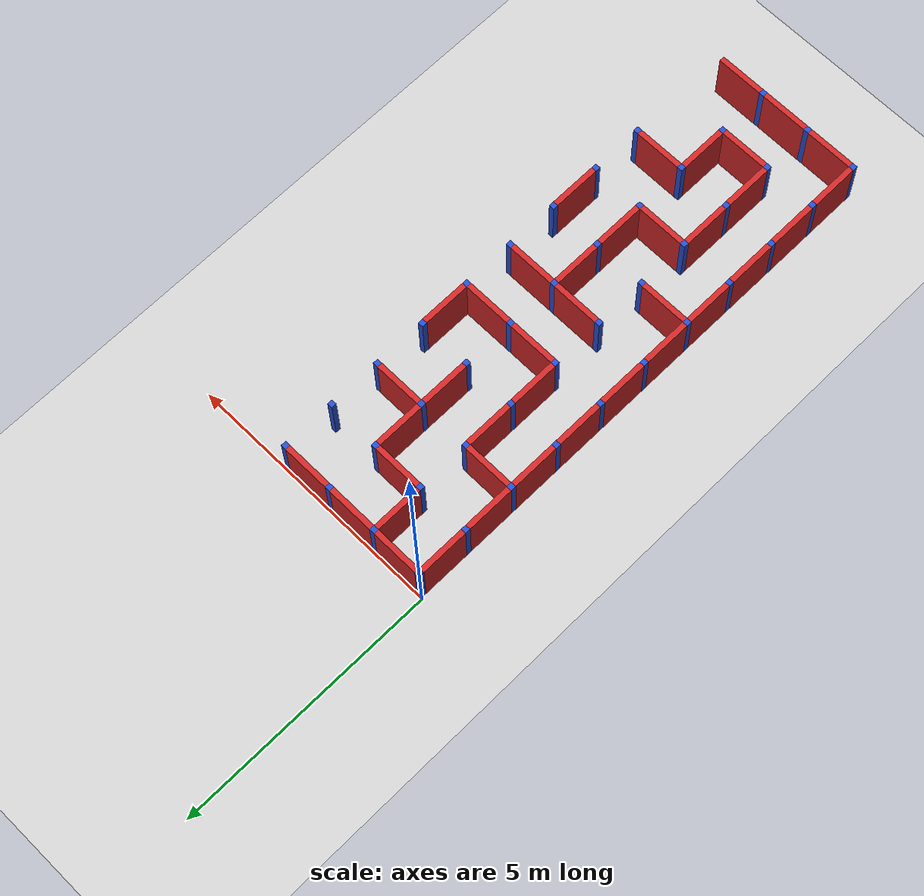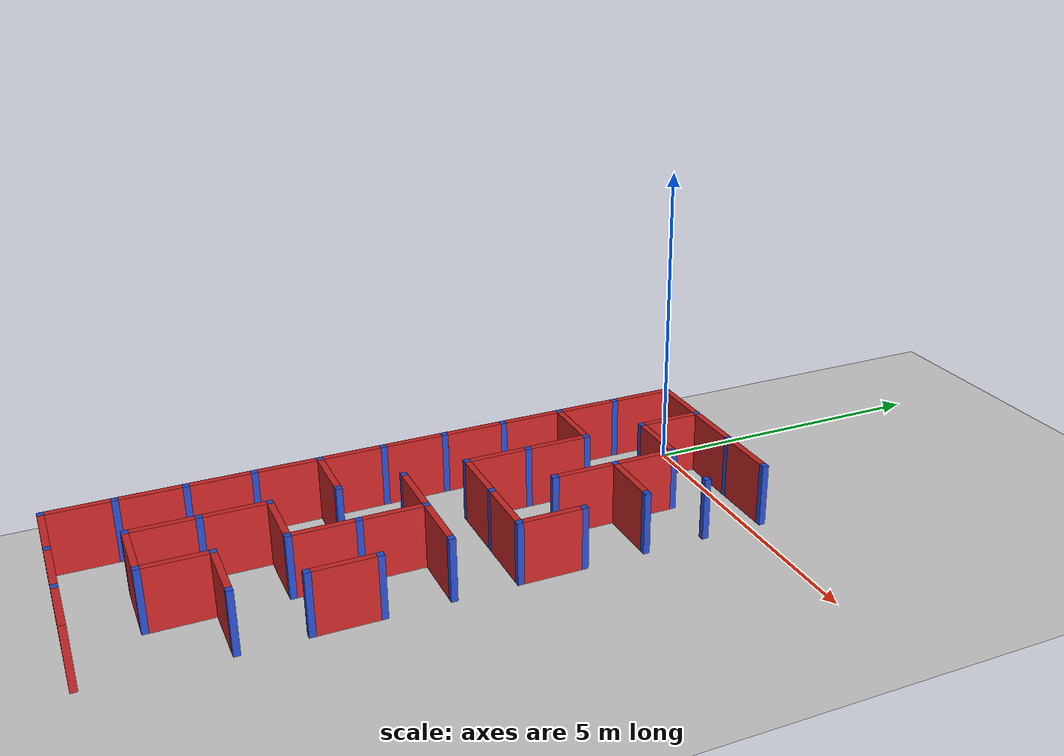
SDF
<sdf version="1.4">
 <world name="maze_world">
  <model name="ground">
   <static>true</static>
   <link name="ground_link">
    <collision name="collision1"><geometry><plane><normal>0 0 1</normal></plane></geometry></collision>
    <visual name="visual1"><geometry><plane><normal>0 0 1</normal><size>100 100</size></plane></geometry></visual>
   </link>
  </model>
  <model name="Untitled">
   <link name="Wall_0_0_h">
    <collision name="Wall_0_Collision">
     <geometry><box><size>0.9 0.1 1</size></box></geometry>
     <pose>0 0 0.75 0 -0 0</pose>
    </collision>
    <visual name="Wall_0_Visual">
     <pose>0 0 0.75 0 -0 0</pose>
     <geometry><box><size>0.9 0.1 1</size></box></geometry>
     <material>
      <script><uri>file://media/materials/scripts/gazebo.material</uri><name>Gazebo/Red</name></script>
      <ambient>0.921569 0.807843 0.615686 1</ambient>
     </material>
     <meta><layer>0</layer></meta>
    </visual>
    <pose>0.5 0 0 0 -0 0</pose>
   </link>
   <link name="Wall_0_0_v">
    <collision name="Wall_0_Collision">
     <geometry><box><size>0.9 0.1 1</size></box></geometry>
     <pose>0 0 0.75 0 -0 0</pose>
    </collision>
    <visual name="Wall_0_Visual">
     <pose>0 0 0.75 0 -0 0</pose>
     <geometry><box><size>0.9 0.1 1</size></box></geometry>
     <material>
      <script><uri>file://media/materials/scripts/gazebo.material</uri><name>Gazebo/Red</name></script>
      <ambient>0.921569 0.807843 0.615686 1</ambient>
     </material>
     <meta><layer>0</layer></meta>
    </visual>
    <pose>0 -0.5 0 0 -0 1.5708</pose>
   </link>
   <link name="Joint_0_0">
    <collision name="Wall_2_Collision">
     <geometry><box><size>0.1 0.1 1</size></box></geometry>
     <pose>0 0 0.75 0 -0 0</pose>
    </collision>
    <visual name="Wall_2_Visual">
     <pose>0 0 0.75 0 -0 0</pose>
     <geometry><box><size>0.1 0.1 1</size></box></geometry>
     <material>
      <script><uri>file://media/materials/scripts/gazebo.material</uri><name>Gazebo/Blue</name></script>
      <ambient>0.996078 0.47451 0.0196078 1</ambient>
     </material>
     <meta><layer>0</layer></meta>
    </visual>
   </link>
   <link name="Wall_1_0_h">
    <collision name="Wall_0_Collision">
     <geometry><box><size>0.9 0.1 1</size></box></geometry>
     <pose>0 0 0.75 0 -0 0</pose>
    </collision>
    <visual name="Wall_0_Visual">
     <pose>0 0 0.75 0 -0 0</pose>
     <geometry><box><size>0.9 0.1 1</size></box></geometry>
     <material>
      <script><uri>file://media/materials/scripts/gazebo.material</uri><name>Gazebo/Red</name></script>
      <ambient>0.921569 0.807843 0.615686 1</ambient>
     </material>
     <meta><layer>0</layer></meta>
    </visual>
    <pose>1.5 0 0 0 -0 0</pose>
   </link>
   <link name="Wall_1_0_v">
    <collision name="Wall_0_Collision">
     <geometry><box><size>0.9 0.1 1</size></box></geometry>
     <pose>0 0 0.75 0 -0 0</pose>
    </collision>
    <visual name="Wall_0_Visual">
     <pose>0 0 0.75 0 -0 0</pose>
     <geometry><box><size>0.9 0.1 1</size></box></geometry>
     <material>
      <script><uri>file://media/materials/scripts/gazebo.material</uri><name>Gazebo/Red</name></script>
      <ambient>0.921569 0.807843 0.615686 1</ambient>
     </material>
     <meta><layer>0</layer></meta>
    </visual>
    <pose>1 -0.5 0 0 -0 1.5708</pose>
   </link>
   <link name="Joint_1_0">
    <collision name="Wall_2_Collision">
     <geometry><box><size>0.1 0.1 1</size></box></geometry>
     <pose>0 0 0.75 0 -0 0</pose>
    </collision>
    <visual name="Wall_2_Visual">
     <pose>0 0 0.75 0 -0 0</pose>
     <geometry><box><size>0.1 0.1 1</size></box></geometry>
     <material>
      <script><uri>file://media/materials/scripts/gazebo.material</uri><name>Gazebo/Blue</name></script>
      <ambient>0.996078 0.47451 0.0196078 1</ambient>
     </material>
     <meta><layer>0</layer></meta>
    </visual>
    <pose>1 0 0 0 -0 0</pose>
   </link>
   <link name="Wall_2_0_h">
    <collision name="Wall_0_Collision">
     <geometry><box><size>0.9 0.1 1</size></box></geometry>
     <pose>0 0 0.75 0 -0 0</pose>
    </collision>
    <visual name="Wall_0_Visual">
     <pose>0 0 0.75 0 -0 0</pose>
     <geometry><box><size>0.9 0.1 1</size></box></geometry>
     <material>
      <script><uri>file://media/materials/scripts/gazebo.material</uri><name>Gazebo/Red</name></script>
      <ambient>0.921569 0.807843 0.615686 1</ambient>
     </material>
     <meta><layer>0</layer></meta>
    </visual>
    <pose>2.5 0 0 0 -0 0</pose>
   </link>
   <link name="Joint_2_0">
    <collision name="Wall_2_Collision">
     <geometry><box><size>0.1 0.1 1</size></box></geometry>
     <pose>0 0 0.75 0 -0 0</pose>
    </collision>
    <visual name="Wall_2_Visual">
     <pose>0 0 0.75 0 -0 0</pose>
     <geometry><box><size>0.1 0.1 1</size></box></geometry>
     <material>
      <script><uri>file://media/materials/scripts/gazebo.material</uri><name>Gazebo/Blue</name></script>
      <ambient>0.996078 0.47451 0.0196078 1</ambient>
     </material>
     <meta><layer>0</layer></meta>
    </visual>
    <pose>2 0 0 0 -0 0</pose>
   </link>
   <link name="Joint_3_0">
    <collision name="Wall_2_Collision">
     <geometry><box><size>0.1 0.1 1</size></box></geometry>
     <pose>0 0 0.75 0 -0 0</pose>
    </collision>
    <visual name="Wall_2_Visual">
     <pose>0 0 0.75 0 -0 0</pose>
     <geometry><box><size>0.1 0.1 1</size></box></geometry>
     <material>
      <script><uri>file://media/materials/scripts/gazebo.material</uri><name>Gazebo/Blue</name></script>
      <ambient>0.996078 0.47451 0.0196078 1</ambient>
     </material>
     <meta><layer>0</layer></meta>
    </visual>
    <pose>3 0 0 0 -0 0</pose>
   </link>
   <link name="Wall_0_1_v">
    <collision name="Wall_0_Collision">
     <geometry><box><size>0.9 0.1 1</size></box></geometry>
     <pose>0 0 0.75 0 -0 0</pose>
    </collision>
    <visual name="Wall_0_Visual">
     <pose>0 0 0.75 0 -0 0</pose>
     <geometry><box><size>0.9 0.1 1</size></box></geometry>
     <material>
      <script><uri>file://media/materials/scripts/gazebo.material</uri><name>Gazebo/Red</name></script>
      <ambient>0.921569 0.807843 0.615686 1</ambient>
     </material>
     <meta><layer>0</layer></meta>
    </visual>
    <pose>0 -1.5 0 0 -0 1.5708</pose>
   </link>
   <link name="Joint_0_-1">
    <collision name="Wall_2_Collision">
     <geometry><box><size>0.1 0.1 1</size></box></geometry>
     <pose>0 0 0.75 0 -0 0</pose>
    </collision>
    <visual name="Wall_2_Visual">
     <pose>0 0 0.75 0 -0 0</pose>
     <geometry><box><size>0.1 0.1 1</size></box></geometry>
     <material>
      <script><uri>file://media/materials/scripts/gazebo.material</uri><name>Gazebo/Blue</name></script>
      <ambient>0.996078 0.47451 0.0196078 1</ambient>
     </material>
     <meta><layer>0</layer></meta>
    </visual>
    <pose>0 -1 0 0 -0 0</pose>
   </link>
   <link name="Wall_1_1_h">
    <collision name="Wall_0_Collision">
     <geometry><box><size>0.9 0.1 1</size></box></geometry>
     <pose>0 0 0.75 0 -0 0</pose>
    </collision>
    <visual name="Wall_0_Visual">
     <pose>0 0 0.75 0 -0 0</pose>
     <geometry><box><size>0.9 0.1 1</size></box></geometry>
     <material>
      <script><uri>file://media/materials/scripts/gazebo.material</uri><name>Gazebo/Red</name></script>
      <ambient>0.921569 0.807843 0.615686 1</ambient>
     </material>
     <meta><layer>0</layer></meta>
    </visual>
    <pose>1.5 -1 0 0 -0 0</pose>
   </link>
   <link name="Joint_1_-1">
    <collision name="Wall_2_Collision">
     <geometry><box><size>0.1 0.1 1</size></box></geometry>
     <pose>0 0 0.75 0 -0 0</pose>
    </collision>
    <visual name="Wall_2_Visual">
     <pose>0 0 0.75 0 -0 0</pose>
     <geometry><box><size>0.1 0.1 1</size></box></geometry>
     <material>
      <script><uri>file://media/materials/scripts/gazebo.material</uri><name>Gazebo/Blue</name></script>
      <ambient>0.996078 0.47451 0.0196078 1</ambient>
     </material>
     <meta><layer>0</layer></meta>
    </visual>
    <pose>1 -1 0 0 -0 0</pose>
   </link>
   <link name="Wall_2_1_v">
    <collision name="Wall_0_Collision">
     <geometry><box><size>0.9 0.1 1</size></box></geometry>
     <pose>0 0 0.75 0 -0 0</pose>
    </collision>
    <visual name="Wall_0_Visual">
     <pose>0 0 0.75 0 -0 0</pose>
     <geometry><box><size>0.9 0.1 1</size></box></geometry>
     <material>
      <script><uri>file://media/materials/scripts/gazebo.material</uri><name>Gazebo/Red</name></script>
      <ambient>0.921569 0.807843 0.615686 1</ambient>
     </material>
     <meta><layer>0</layer></meta>
    </visual>
    <pose>2 -1.5 0 0 -0 1.5708</pose>
   </link>
   <link name="Joint_2_-1">
    <collision name="Wall_2_Collision">
     <geometry><box><size>0.1 0.1 1</size></box></geometry>
     <pose>0 0 0.75 0 -0 0</pose>
    </collision>
    <visual name="Wall_2_Visual">
     <pose>0 0 0.75 0 -0 0</pose>
     <geometry><box><size>0.1 0.1 1</size></box></geometry>
     <material>
      <script><uri>file://media/materials/scripts/gazebo.material</uri><name>Gazebo/Blue</name></script>
      <ambient>0.996078 0.47451 0.0196078 1</ambient>
     </material>
     <meta><layer>0</layer></meta>
    </visual>
    <pose>2 -1 0 0 -0 0</pose>
   </link>
   <link name="Joint_3_-1">
    <collision name="Wall_2_Collision">
     <geometry><box><size>0.1 0.1 1</size></box></geometry>
     <pose>0 0 0.75 0 -0 0</pose>
    </collision>
    <visual name="Wall_2_Visual">
     <pose>0 0 0.75 0 -0 0</pose>
     <geometry><box><size>0.1 0.1 1</size></box></geometry>
     <material>
      <script><uri>file://media/materials/scripts/gazebo.material</uri><name>Gazebo/Blue</name></script>
      <ambient>0.996078 0.47451 0.0196078 1</ambient>
     </material>
     <meta><layer>0</layer></meta>
    </visual>
    <pose>3 -1 0 0 -0 0</pose>
   </link>
   <link name="Wall_0_2_h">
    <collision name="Wall_0_Collision">
     <geometry><box><size>0.9 0.1 1</size></box></geometry>
     <pose>0 0 0.75 0 -0 0</pose>
    </collision>
    <visual name="Wall_0_Visual">
     <pose>0 0 0.75 0 -0 0</pose>
     <geometry><box><size>0.9 0.1 1</size></box></geometry>
     <material>
      <script><uri>file://media/materials/scripts/gazebo.material</uri><name>Gazebo/Red</name></script>
      <ambient>0.921569 0.807843 0.615686 1</ambient>
     </material>
     <meta><layer>0</layer></meta>
    </visual>
    <pose>0.5 -2 0 0 -0 0</pose>
   </link>
   <link name="Wall_0_2_v">
    <collision name="Wall_0_Collision">
     <geometry><box><size>0.9 0.1 1</size></box></geometry>
     <pose>0 0 0.75 0 -0 0</pose>
    </collision>
    <visual name="Wall_0_Visual">
     <pose>0 0 0.75 0 -0 0</pose>
     <geometry><box><size>0.9 0.1 1</size></box></geometry>
     <material>
      <script><uri>file://media/materials/scripts/gazebo.material</uri><name>Gazebo/Red</name></script>
      <ambient>0.921569 0.807843 0.615686 1</ambient>
     </material>
     <meta><layer>0</layer></meta>
    </visual>
    <pose>0 -2.5 0 0 -0 1.5708</pose>
   </link>
   <link name="Joint_0_-2">
    <collision name="Wall_2_Collision">
     <geometry><box><size>0.1 0.1 1</size></box></geometry>
     <pose>0 0 0.75 0 -0 0</pose>
    </collision>
    <visual name="Wall_2_Visual">
     <pose>0 0 0.75 0 -0 0</pose>
     <geometry><box><size>0.1 0.1 1</size></box></geometry>
     <material>
      <script><uri>file://media/materials/scripts/gazebo.material</uri><name>Gazebo/Blue</name></script>
      <ambient>0.996078 0.47451 0.0196078 1</ambient>
     </material>
     <meta><layer>0</layer></meta>
    </visual>
    <pose>0 -2 0 0 -0 0</pose>
   </link>
   <link name="Wall_1_2_v">
    <collision name="Wall_0_Collision">
     <geometry><box><size>0.9 0.1 1</size></box></geometry>
     <pose>0 0 0.75 0 -0 0</pose>
    </collision>
    <visual name="Wall_0_Visual">
     <pose>0 0 0.75 0 -0 0</pose>
     <geometry><box><size>0.9 0.1 1</size></box></geometry>
     <material>
      <script><uri>file://media/materials/scripts/gazebo.material</uri><name>Gazebo/Red</name></script>
      <ambient>0.921569 0.807843 0.615686 1</ambient>
     </material>
     <meta><layer>0</layer></meta>
    </visual>
    <pose>1 -2.5 0 0 -0 1.5708</pose>
   </link>
   <link name="Joint_1_-2">
    <collision name="Wall_2_Collision">
     <geometry><box><size>0.1 0.1 1</size></box></geometry>
     <pose>0 0 0.75 0 -0 0</pose>
    </collision>
    <visual name="Wall_2_Visual">
     <pose>0 0 0.75 0 -0 0</pose>
     <geometry><box><size>0.1 0.1 1</size></box></geometry>
     <material>
      <script><uri>file://media/materials/scripts/gazebo.material</uri><name>Gazebo/Blue</name></script>
      <ambient>0.996078 0.47451 0.0196078 1</ambient>
     </material>
     <meta><layer>0</layer></meta>
    </visual>
    <pose>1 -2 0 0 -0 0</pose>
   </link>
   <link name="Wall_2_2_h">
    <collision name="Wall_0_Collision">
     <geometry><box><size>0.9 0.1 1</size></box></geometry>
     <pose>0 0 0.75 0 -0 0</pose>
    </collision>
    <visual name="Wall_0_Visual">
     <pose>0 0 0.75 0 -0 0</pose>
     <geometry><box><size>0.9 0.1 1</size></box></geometry>
     <material>
      <script><uri>file://media/materials/scripts/gazebo.material</uri><name>Gazebo/Red</name></script>
      <ambient>0.921569 0.807843 0.615686 1</ambient>
     </material>
     <meta><layer>0</layer></meta>
    </visual>
    <pose>2.5 -2 0 0 -0 0</pose>
   </link>
   <link name="Wall_2_2_v">
    <collision name="Wall_0_Collision">
     <geometry><box><size>0.9 0.1 1</size></box></geometry>
     <pose>0 0 0.75 0 -0 0</pose>
    </collision>
    <visual name="Wall_0_Visual">
     <pose>0 0 0.75 0 -0 0</pose>
     <geometry><box><size>0.9 0.1 1</size></box></geometry>
     <material>
      <script><uri>file://media/materials/scripts/gazebo.material</uri><name>Gazebo/Red</name></script>
      <ambient>0.921569 0.807843 0.615686 1</ambient>
     </material>
     <meta><layer>0</layer></meta>
    </visual>
    <pose>2 -2.5 0 0 -0 1.5708</pose>
   </link>
   <link name="Joint_2_-2">
    <collision name="Wall_2_Collision">
     <geometry><box><size>0.1 0.1 1</size></box></geometry>
     <pose>0 0 0.75 0 -0 0</pose>
    </collision>
    <visual name="Wall_2_Visual">
     <pose>0 0 0.75 0 -0 0</pose>
     <geometry><box><size>0.1 0.1 1</size></box></geometry>
     <material>
      <script><uri>file://media/materials/scripts/gazebo.material</uri><name>Gazebo/Blue</name></script>
      <ambient>0.996078 0.47451 0.0196078 1</ambient>
     </material>
     <meta><layer>0</layer></meta>
    </visual>
    <pose>2 -2 0 0 -0 0</pose>
   </link>
   <link name="Joint_3_-2">
    <collision name="Wall_2_Collision">
     <geometry><box><size>0.1 0.1 1</size></box></geometry>
     <pose>0 0 0.75 0 -0 0</pose>
    </collision>
    <visual name="Wall_2_Visual">
     <pose>0 0 0.75 0 -0 0</pose>
     <geometry><box><size>0.1 0.1 1</size></box></geometry>
     <material>
      <script><uri>file://media/materials/scripts/gazebo.material</uri><name>Gazebo/Blue</name></script>
      <ambient>0.996078 0.47451 0.0196078 1</ambient>
     </material>
     <meta><layer>0</layer></meta>
    </visual>
    <pose>3 -2 0 0 -0 0</pose>
   </link>
   <link name="Wall_0_3_v">
    <collision name="Wall_0_Collision">
     <geometry><box><size>0.9 0.1 1</size></box></geometry>
     <pose>0 0 0.75 0 -0 0</pose>
    </collision>
    <visual name="Wall_0_Visual">
     <pose>0 0 0.75 0 -0 0</pose>
     <geometry><box><size>0.9 0.1 1</size></box></geometry>
     <material>
      <script><uri>file://media/materials/scripts/gazebo.material</uri><name>Gazebo/Red</name></script>
      <ambient>0.921569 0.807843 0.615686 1</ambient>
     </material>
     <meta><layer>0</layer></meta>
    </visual>
    <pose>0 -3.5 0 0 -0 1.5708</pose>
   </link>
   <link name="Joint_0_-3">
    <collision name="Wall_2_Collision">
     <geometry><box><size>0.1 0.1 1</size></box></geometry>
     <pose>0 0 0.75 0 -0 0</pose>
    </collision>
    <visual name="Wall_2_Visual">
     <pose>0 0 0.75 0 -0 0</pose>
     <geometry><box><size>0.1 0.1 1</size></box></geometry>
     <material>
      <script><uri>file://media/materials/scripts/gazebo.material</uri><name>Gazebo/Blue</name></script>
      <ambient>0.996078 0.47451 0.0196078 1</ambient>
     </material>
     <meta><layer>0</layer></meta>
    </visual>
    <pose>0 -3 0 0 -0 0</pose>
   </link>
   <link name="Wall_1_3_v">
    <collision name="Wall_0_Collision">
     <geometry><box><size>0.9 0.1 1</size></box></geometry>
     <pose>0 0 0.75 0 -0 0</pose>
    </collision>
    <visual name="Wall_0_Visual">
     <pose>0 0 0.75 0 -0 0</pose>
     <geometry><box><size>0.9 0.1 1</size></box></geometry>
     <material>
      <script><uri>file://media/materials/scripts/gazebo.material</uri><name>Gazebo/Red</name></script>
      <ambient>0.921569 0.807843 0.615686 1</ambient>
     </material>
     <meta><layer>0</layer></meta>
    </visual>
    <pose>1 -3.5 0 0 -0 1.5708</pose>
   </link>
   <link name="Joint_1_-3">
    <collision name="Wall_2_Collision">
     <geometry><box><size>0.1 0.1 1</size></box></geometry>
     <pose>0 0 0.75 0 -0 0</pose>
    </collision>
    <visual name="Wall_2_Visual">
     <pose>0 0 0.75 0 -0 0</pose>
     <geometry><box><size>0.1 0.1 1</size></box></geometry>
     <material>
      <script><uri>file://media/materials/scripts/gazebo.material</uri><name>Gazebo/Blue</name></script>
      <ambient>0.996078 0.47451 0.0196078 1</ambient>
     </material>
     <meta><layer>0</layer></meta>
    </visual>
    <pose>1 -3 0 0 -0 0</pose>
   </link>
   <link name="Joint_2_-3">
    <collision name="Wall_2_Collision">
     <geometry><box><size>0.1 0.1 1</size></box></geometry>
     <pose>0 0 0.75 0 -0 0</pose>
    </collision>
    <visual name="Wall_2_Visual">
     <pose>0 0 0.75 0 -0 0</pose>
     <geometry><box><size>0.1 0.1 1</size></box></geometry>
     <material>
      <script><uri>file://media/materials/scripts/gazebo.material</uri><name>Gazebo/Blue</name></script>
      <ambient>0.996078 0.47451 0.0196078 1</ambient>
     </material>
     <meta><layer>0</layer></meta>
    </visual>
    <pose>2 -3 0 0 -0 0</pose>
   </link>
   <link name="Wall_3_3_v">
    <collision name="Wall_0_Collision">
     <geometry><box><size>0.9 0.1 1</size></box></geometry>
     <pose>0 0 0.75 0 -0 0</pose>
    </collision>
    <visual name="Wall_0_Visual">
     <pose>0 0 0.75 0 -0 0</pose>
     <geometry><box><size>0.9 0.1 1</size></box></geometry>
     <material>
      <script><uri>file://media/materials/scripts/gazebo.material</uri><name>Gazebo/Red</name></script>
      <ambient>0.921569 0.807843 0.615686 1</ambient>
     </material>
     <meta><layer>0</layer></meta>
    </visual>
    <pose>3 -3.5 0 0 -0 1.5708</pose>
   </link>
   <link name="Joint_3_-3">
    <collision name="Wall_2_Collision">
     <geometry><box><size>0.1 0.1 1</size></box></geometry>
     <pose>0 0 0.75 0 -0 0</pose>
    </collision>
    <visual name="Wall_2_Visual">
     <pose>0 0 0.75 0 -0 0</pose>
     <geometry><box><size>0.1 0.1 1</size></box></geometry>
     <material>
      <script><uri>file://media/materials/scripts/gazebo.material</uri><name>Gazebo/Blue</name></script>
      <ambient>0.996078 0.47451 0.0196078 1</ambient>
     </material>
     <meta><layer>0</layer></meta>
    </visual>
    <pose>3 -3 0 0 -0 0</pose>
   </link>
   <link name="Wall_0_4_v">
    <collision name="Wall_0_Collision">
     <geometry><box><size>0.9 0.1 1</size></box></geometry>
     <pose>0 0 0.75 0 -0 0</pose>
    </collision>
    <visual name="Wall_0_Visual">
     <pose>0 0 0.75 0 -0 0</pose>
     <geometry><box><size>0.9 0.1 1</size></box></geometry>
     <material>
      <script><uri>file://media/materials/scripts/gazebo.material</uri><name>Gazebo/Red</name></script>
      <ambient>0.921569 0.807843 0.615686 1</ambient>
     </material>
     <meta><layer>0</layer></meta>
    </visual>
    <pose>0 -4.5 0 0 -0 1.5708</pose>
   </link>
   <link name="Joint_0_-4">
    <collision name="Wall_2_Collision">
     <geometry><box><size>0.1 0.1 1</size></box></geometry>
     <pose>0 0 0.75 0 -0 0</pose>
    </collision>
    <visual name="Wall_2_Visual">
     <pose>0 0 0.75 0 -0 0</pose>
     <geometry><box><size>0.1 0.1 1</size></box></geometry>
     <material>
      <script><uri>file://media/materials/scripts/gazebo.material</uri><name>Gazebo/Blue</name></script>
      <ambient>0.996078 0.47451 0.0196078 1</ambient>
     </material>
     <meta><layer>0</layer></meta>
    </visual>
    <pose>0 -4 0 0 -0 0</pose>
   </link>
   <link name="Wall_1_4_h">
    <collision name="Wall_0_Collision">
     <geometry><box><size>0.9 0.1 1</size></box></geometry>
     <pose>0 0 0.75 0 -0 0</pose>
    </collision>
    <visual name="Wall_0_Visual">
     <pose>0 0 0.75 0 -0 0</pose>
     <geometry><box><size>0.9 0.1 1</size></box></geometry>
     <material>
      <script><uri>file://media/materials/scripts/gazebo.material</uri><name>Gazebo/Red</name></script>
      <ambient>0.921569 0.807843 0.615686 1</ambient>
     </material>
     <meta><layer>0</layer></meta>
    </visual>
    <pose>1.5 -4 0 0 -0 0</pose>
   </link>
   <link name="Joint_1_-4">
    <collision name="Wall_2_Collision">
     <geometry><box><size>0.1 0.1 1</size></box></geometry>
     <pose>0 0 0.75 0 -0 0</pose>
    </collision>
    <visual name="Wall_2_Visual">
     <pose>0 0 0.75 0 -0 0</pose>
     <geometry><box><size>0.1 0.1 1</size></box></geometry>
     <material>
      <script><uri>file://media/materials/scripts/gazebo.material</uri><name>Gazebo/Blue</name></script>
      <ambient>0.996078 0.47451 0.0196078 1</ambient>
     </material>
     <meta><layer>0</layer></meta>
    </visual>
    <pose>1 -4 0 0 -0 0</pose>
   </link>
   <link name="Wall_2_4_h">
    <collision name="Wall_0_Collision">
     <geometry><box><size>0.9 0.1 1</size></box></geometry>
     <pose>0 0 0.75 0 -0 0</pose>
    </collision>
    <visual name="Wall_0_Visual">
     <pose>0 0 0.75 0 -0 0</pose>
     <geometry><box><size>0.9 0.1 1</size></box></geometry>
     <material>
      <script><uri>file://media/materials/scripts/gazebo.material</uri><name>Gazebo/Red</name></script>
      <ambient>0.921569 0.807843 0.615686 1</ambient>
     </material>
     <meta><layer>0</layer></meta>
    </visual>
    <pose>2.5 -4 0 0 -0 0</pose>
   </link>
   <link name="Joint_2_-4">
    <collision name="Wall_2_Collision">
     <geometry><box><size>0.1 0.1 1</size></box></geometry>
     <pose>0 0 0.75 0 -0 0</pose>
    </collision>
    <visual name="Wall_2_Visual">
     <pose>0 0 0.75 0 -0 0</pose>
     <geometry><box><size>0.1 0.1 1</size></box></geometry>
     <material>
      <script><uri>file://media/materials/scripts/gazebo.material</uri><name>Gazebo/Blue</name></script>
      <ambient>0.996078 0.47451 0.0196078 1</ambient>
     </material>
     <meta><layer>0</layer></meta>
    </visual>
    <pose>2 -4 0 0 -0 0</pose>
   </link>
   <link name="Joint_3_-4">
    <collision name="Wall_2_Collision">
     <geometry><box><size>0.1 0.1 1</size></box></geometry>
     <pose>0 0 0.75 0 -0 0</pose>
    </collision>
    <visual name="Wall_2_Visual">
     <pose>0 0 0.75 0 -0 0</pose>
     <geometry><box><size>0.1 0.1 1</size></box></geometry>
     <material>
      <script><uri>file://media/materials/scripts/gazebo.material</uri><name>Gazebo/Blue</name></script>
      <ambient>0.996078 0.47451 0.0196078 1</ambient>
     </material>
     <meta><layer>0</layer></meta>
    </visual>
    <pose>3 -4 0 0 -0 0</pose>
   </link>
   <link name="Wall_0_5_v">
    <collision name="Wall_0_Collision">
     <geometry><box><size>0.9 0.1 1</size></box></geometry>
     <pose>0 0 0.75 0 -0 0</pose>
    </collision>
    <visual name="Wall_0_Visual">
     <pose>0 0 0.75 0 -0 0</pose>
     <geometry><box><size>0.9 0.1 1</size></box></geometry>
     <material>
      <script><uri>file://media/materials/scripts/gazebo.material</uri><name>Gazebo/Red</name></script>
      <ambient>0.921569 0.807843 0.615686 1</ambient>
     </material>
     <meta><layer>0</layer></meta>
    </visual>
    <pose>0 -5.5 0 0 -0 1.5708</pose>
   </link>
   <link name="Joint_0_-5">
    <collision name="Wall_2_Collision">
     <geometry><box><size>0.1 0.1 1</size></box></geometry>
     <pose>0 0 0.75 0 -0 0</pose>
    </collision>
    <visual name="Wall_2_Visual">
     <pose>0 0 0.75 0 -0 0</pose>
     <geometry><box><size>0.1 0.1 1</size></box></geometry>
     <material>
      <script><uri>file://media/materials/scripts/gazebo.material</uri><name>Gazebo/Blue</name></script>
      <ambient>0.996078 0.47451 0.0196078 1</ambient>
     </material>
     <meta><layer>0</layer></meta>
    </visual>
    <pose>0 -5 0 0 -0 0</pose>
   </link>
   <link name="Wall_1_5_h">
    <collision name="Wall_0_Collision">
     <geometry><box><size>0.9 0.1 1</size></box></geometry>
     <pose>0 0 0.75 0 -0 0</pose>
    </collision>
    <visual name="Wall_0_Visual">
     <pose>0 0 0.75 0 -0 0</pose>
     <geometry><box><size>0.9 0.1 1</size></box></geometry>
     <material>
      <script><uri>file://media/materials/scripts/gazebo.material</uri><name>Gazebo/Red</name></script>
      <ambient>0.921569 0.807843 0.615686 1</ambient>
     </material>
     <meta><layer>0</layer></meta>
    </visual>
    <pose>1.5 -5 0 0 -0 0</pose>
   </link>
   <link name="Joint_1_-5">
    <collision name="Wall_2_Collision">
     <geometry><box><size>0.1 0.1 1</size></box></geometry>
     <pose>0 0 0.75 0 -0 0</pose>
    </collision>
    <visual name="Wall_2_Visual">
     <pose>0 0 0.75 0 -0 0</pose>
     <geometry><box><size>0.1 0.1 1</size></box></geometry>
     <material>
      <script><uri>file://media/materials/scripts/gazebo.material</uri><name>Gazebo/Blue</name></script>
      <ambient>0.996078 0.47451 0.0196078 1</ambient>
     </material>
     <meta><layer>0</layer></meta>
    </visual>
    <pose>1 -5 0 0 -0 0</pose>
   </link>
   <link name="Wall_2_5_h">
    <collision name="Wall_0_Collision">
     <geometry><box><size>0.9 0.1 1</size></box></geometry>
     <pose>0 0 0.75 0 -0 0</pose>
    </collision>
    <visual name="Wall_0_Visual">
     <pose>0 0 0.75 0 -0 0</pose>
     <geometry><box><size>0.9 0.1 1</size></box></geometry>
     <material>
      <script><uri>file://media/materials/scripts/gazebo.material</uri><name>Gazebo/Red</name></script>
      <ambient>0.921569 0.807843 0.615686 1</ambient>
     </material>
     <meta><layer>0</layer></meta>
    </visual>
    <pose>2.5 -5 0 0 -0 0</pose>
   </link>
   <link name="Wall_2_5_v">
    <collision name="Wall_0_Collision">
     <geometry><box><size>0.9 0.1 1</size></box></geometry>
     <pose>0 0 0.75 0 -0 0</pose>
    </collision>
    <visual name="Wall_0_Visual">
     <pose>0 0 0.75 0 -0 0</pose>
     <geometry><box><size>0.9 0.1 1</size></box></geometry>
     <material>
      <script><uri>file://media/materials/scripts/gazebo.material</uri><name>Gazebo/Red</name></script>
      <ambient>0.921569 0.807843 0.615686 1</ambient>
     </material>
     <meta><layer>0</layer></meta>
    </visual>
    <pose>2 -5.5 0 0 -0 1.5708</pose>
   </link>
   <link name="Joint_2_-5">
    <collision name="Wall_2_Collision">
     <geometry><box><size>0.1 0.1 1</size></box></geometry>
     <pose>0 0 0.75 0 -0 0</pose>
    </collision>
    <visual name="Wall_2_Visual">
     <pose>0 0 0.75 0 -0 0</pose>
     <geometry><box><size>0.1 0.1 1</size></box></geometry>
     <material>
      <script><uri>file://media/materials/scripts/gazebo.material</uri><name>Gazebo/Blue</name></script>
      <ambient>0.996078 0.47451 0.0196078 1</ambient>
     </material>
     <meta><layer>0</layer></meta>
    </visual>
    <pose>2 -5 0 0 -0 0</pose>
   </link>
   <link name="Joint_3_-5">
    <collision name="Wall_2_Collision">
     <geometry><box><size>0.1 0.1 1</size></box></geometry>
     <pose>0 0 0.75 0 -0 0</pose>
    </collision>
    <visual name="Wall_2_Visual">
     <pose>0 0 0.75 0 -0 0</pose>
     <geometry><box><size>0.1 0.1 1</size></box></geometry>
     <material>
      <script><uri>file://media/materials/scripts/gazebo.material</uri><name>Gazebo/Blue</name></script>
      <ambient>0.996078 0.47451 0.0196078 1</ambient>
     </material>
     <meta><layer>0</layer></meta>
    </visual>
    <pose>3 -5 0 0 -0 0</pose>
   </link>
   <link name="Wall_0_6_h">
    <collision name="Wall_0_Collision">
     <geometry><box><size>0.9 0.1 1</size></box></geometry>
     <pose>0 0 0.75 0 -0 0</pose>
    </collision>
    <visual name="Wall_0_Visual">
     <pose>0 0 0.75 0 -0 0</pose>
     <geometry><box><size>0.9 0.1 1</size></box></geometry>
     <material>
      <script><uri>file://media/materials/scripts/gazebo.material</uri><name>Gazebo/Red</name></script>
      <ambient>0.921569 0.807843 0.615686 1</ambient>
     </material>
     <meta><layer>0</layer></meta>
    </visual>
    <pose>0.5 -6 0 0 -0 0</pose>
   </link>
   <link name="Wall_0_6_v">
    <collision name="Wall_0_Collision">
     <geometry><box><size>0.9 0.1 1</size></box></geometry>
     <pose>0 0 0.75 0 -0 0</pose>
    </collision>
    <visual name="Wall_0_Visual">
     <pose>0 0 0.75 0 -0 0</pose>
     <geometry><box><size>0.9 0.1 1</size></box></geometry>
     <material>
      <script><uri>file://media/materials/scripts/gazebo.material</uri><name>Gazebo/Red</name></script>
      <ambient>0.921569 0.807843 0.615686 1</ambient>
     </material>
     <meta><layer>0</layer></meta>
    </visual>
    <pose>0 -6.5 0 0 -0 1.5708</pose>
   </link>
   <link name="Joint_0_-6">
    <collision name="Wall_2_Collision">
     <geometry><box><size>0.1 0.1 1</size></box></geometry>
     <pose>0 0 0.75 0 -0 0</pose>
    </collision>
    <visual name="Wall_2_Visual">
     <pose>0 0 0.75 0 -0 0</pose>
     <geometry><box><size>0.1 0.1 1</size></box></geometry>
     <material>
      <script><uri>file://media/materials/scripts/gazebo.material</uri><name>Gazebo/Blue</name></script>
      <ambient>0.996078 0.47451 0.0196078 1</ambient>
     </material>
     <meta><layer>0</layer></meta>
    </visual>
    <pose>0 -6 0 0 -0 0</pose>
   </link>
   <link name="Joint_1_-6">
    <collision name="Wall_2_Collision">
     <geometry><box><size>0.1 0.1 1</size></box></geometry>
     <pose>0 0 0.75 0 -0 0</pose>
    </collision>
    <visual name="Wall_2_Visual">
     <pose>0 0 0.75 0 -0 0</pose>
     <geometry><box><size>0.1 0.1 1</size></box></geometry>
     <material>
      <script><uri>file://media/materials/scripts/gazebo.material</uri><name>Gazebo/Blue</name></script>
      <ambient>0.996078 0.47451 0.0196078 1</ambient>
     </material>
     <meta><layer>0</layer></meta>
    </visual>
    <pose>1 -6 0 0 -0 0</pose>
   </link>
   <link name="Wall_2_6_v">
    <collision name="Wall_0_Collision">
     <geometry><box><size>0.9 0.1 1</size></box></geometry>
     <pose>0 0 0.75 0 -0 0</pose>
    </collision>
    <visual name="Wall_0_Visual">
     <pose>0 0 0.75 0 -0 0</pose>
     <geometry><box><size>0.9 0.1 1</size></box></geometry>
     <material>
      <script><uri>file://media/materials/scripts/gazebo.material</uri><name>Gazebo/Red</name></script>
      <ambient>0.921569 0.807843 0.615686 1</ambient>
     </material>
     <meta><layer>0</layer></meta>
    </visual>
    <pose>2 -6.5 0 0 -0 1.5708</pose>
   </link>
   <link name="Joint_2_-6">
    <collision name="Wall_2_Collision">
     <geometry><box><size>0.1 0.1 1</size></box></geometry>
     <pose>0 0 0.75 0 -0 0</pose>
    </collision>
    <visual name="Wall_2_Visual">
     <pose>0 0 0.75 0 -0 0</pose>
     <geometry><box><size>0.1 0.1 1</size></box></geometry>
     <material>
      <script><uri>file://media/materials/scripts/gazebo.material</uri><name>Gazebo/Blue</name></script>
      <ambient>0.996078 0.47451 0.0196078 1</ambient>
     </material>
     <meta><layer>0</layer></meta>
    </visual>
    <pose>2 -6 0 0 -0 0</pose>
   </link>
   <link name="Wall_3_6_v">
    <collision name="Wall_0_Collision">
     <geometry><box><size>0.9 0.1 1</size></box></geometry>
     <pose>0 0 0.75 0 -0 0</pose>
    </collision>
    <visual name="Wall_0_Visual">
     <pose>0 0 0.75 0 -0 0</pose>
     <geometry><box><size>0.9 0.1 1</size></box></geometry>
     <material>
      <script><uri>file://media/materials/scripts/gazebo.material</uri><name>Gazebo/Red</name></script>
      <ambient>0.921569 0.807843 0.615686 1</ambient>
     </material>
     <meta><layer>0</layer></meta>
    </visual>
    <pose>3 -6.5 0 0 -0 1.5708</pose>
   </link>
   <link name="Joint_3_-6">
    <collision name="Wall_2_Collision">
     <geometry><box><size>0.1 0.1 1</size></box></geometry>
     <pose>0 0 0.75 0 -0 0</pose>
    </collision>
    <visual name="Wall_2_Visual">
     <pose>0 0 0.75 0 -0 0</pose>
     <geometry><box><size>0.1 0.1 1</size></box></geometry>
     <material>
      <script><uri>file://media/materials/scripts/gazebo.material</uri><name>Gazebo/Blue</name></script>
      <ambient>0.996078 0.47451 0.0196078 1</ambient>
     </material>
     <meta><layer>0</layer></meta>
    </visual>
    <pose>3 -6 0 0 -0 0</pose>
   </link>
   <link name="Wall_0_7_v">
    <collision name="Wall_0_Collision">
     <geometry><box><size>0.9 0.1 1</size></box></geometry>
     <pose>0 0 0.75 0 -0 0</pose>
    </collision>
    <visual name="Wall_0_Visual">
     <pose>0 0 0.75 0 -0 0</pose>
     <geometry><box><size>0.9 0.1 1</size></box></geometry>
     <material>
      <script><uri>file://media/materials/scripts/gazebo.material</uri><name>Gazebo/Red</name></script>
      <ambient>0.921569 0.807843 0.615686 1</ambient>
     </material>
     <meta><layer>0</layer></meta>
    </visual>
    <pose>0 -7.5 0 0 -0 1.5708</pose>
   </link>
   <link name="Joint_0_-7">
    <collision name="Wall_2_Collision">
     <geometry><box><size>0.1 0.1 1</size></box></geometry>
     <pose>0 0 0.75 0 -0 0</pose>
    </collision>
    <visual name="Wall_2_Visual">
     <pose>0 0 0.75 0 -0 0</pose>
     <geometry><box><size>0.1 0.1 1</size></box></geometry>
     <material>
      <script><uri>file://media/materials/scripts/gazebo.material</uri><name>Gazebo/Blue</name></script>
      <ambient>0.996078 0.47451 0.0196078 1</ambient>
     </material>
     <meta><layer>0</layer></meta>
    </visual>
    <pose>0 -7 0 0 -0 0</pose>
   </link>
   <link name="Wall_1_7_h">
    <collision name="Wall_0_Collision">
     <geometry><box><size>0.9 0.1 1</size></box></geometry>
     <pose>0 0 0.75 0 -0 0</pose>
    </collision>
    <visual name="Wall_0_Visual">
     <pose>0 0 0.75 0 -0 0</pose>
     <geometry><box><size>0.9 0.1 1</size></box></geometry>
     <material>
      <script><uri>file://media/materials/scripts/gazebo.material</uri><name>Gazebo/Red</name></script>
      <ambient>0.921569 0.807843 0.615686 1</ambient>
     </material>
     <meta><layer>0</layer></meta>
    </visual>
    <pose>1.5 -7 0 0 -0 0</pose>
   </link>
   <link name="Wall_1_7_v">
    <collision name="Wall_0_Collision">
     <geometry><box><size>0.9 0.1 1</size></box></geometry>
     <pose>0 0 0.75 0 -0 0</pose>
    </collision>
    <visual name="Wall_0_Visual">
     <pose>0 0 0.75 0 -0 0</pose>
     <geometry><box><size>0.9 0.1 1</size></box></geometry>
     <material>
      <script><uri>file://media/materials/scripts/gazebo.material</uri><name>Gazebo/Red</name></script>
      <ambient>0.921569 0.807843 0.615686 1</ambient>
     </material>
     <meta><layer>0</layer></meta>
    </visual>
    <pose>1 -7.5 0 0 -0 1.5708</pose>
   </link>
   <link name="Joint_1_-7">
    <collision name="Wall_2_Collision">
     <geometry><box><size>0.1 0.1 1</size></box></geometry>
     <pose>0 0 0.75 0 -0 0</pose>
    </collision>
    <visual name="Wall_2_Visual">
     <pose>0 0 0.75 0 -0 0</pose>
     <geometry><box><size>0.1 0.1 1</size></box></geometry>
     <material>
      <script><uri>file://media/materials/scripts/gazebo.material</uri><name>Gazebo/Blue</name></script>
      <ambient>0.996078 0.47451 0.0196078 1</ambient>
     </material>
     <meta><layer>0</layer></meta>
    </visual>
    <pose>1 -7 0 0 -0 0</pose>
   </link>
   <link name="Joint_2_-7">
    <collision name="Wall_2_Collision">
     <geometry><box><size>0.1 0.1 1</size></box></geometry>
     <pose>0 0 0.75 0 -0 0</pose>
    </collision>
    <visual name="Wall_2_Visual">
     <pose>0 0 0.75 0 -0 0</pose>
     <geometry><box><size>0.1 0.1 1</size></box></geometry>
     <material>
      <script><uri>file://media/materials/scripts/gazebo.material</uri><name>Gazebo/Blue</name></script>
      <ambient>0.996078 0.47451 0.0196078 1</ambient>
     </material>
     <meta><layer>0</layer></meta>
    </visual>
    <pose>2 -7 0 0 -0 0</pose>
   </link>
   <link name="Joint_3_-7">
    <collision name="Wall_2_Collision">
     <geometry><box><size>0.1 0.1 1</size></box></geometry>
     <pose>0 0 0.75 0 -0 0</pose>
    </collision>
    <visual name="Wall_2_Visual">
     <pose>0 0 0.75 0 -0 0</pose>
     <geometry><box><size>0.1 0.1 1</size></box></geometry>
     <material>
      <script><uri>file://media/materials/scripts/gazebo.material</uri><name>Gazebo/Blue</name></script>
      <ambient>0.996078 0.47451 0.0196078 1</ambient>
     </material>
     <meta><layer>0</layer></meta>
    </visual>
    <pose>3 -7 0 0 -0 0</pose>
   </link>
   <link name="Wall_0_8_v">
    <collision name="Wall_0_Collision">
     <geometry><box><size>0.9 0.1 1</size></box></geometry>
     <pose>0 0 0.75 0 -0 0</pose>
    </collision>
    <visual name="Wall_0_Visual">
     <pose>0 0 0.75 0 -0 0</pose>
     <geometry><box><size>0.9 0.1 1</size></box></geometry>
     <material>
      <script><uri>file://media/materials/scripts/gazebo.material</uri><name>Gazebo/Red</name></script>
      <ambient>0.921569 0.807843 0.615686 1</ambient>
     </material>
     <meta><layer>0</layer></meta>
    </visual>
    <pose>0 -8.5 0 0 -0 1.5708</pose>
   </link>
   <link name="Joint_0_-8">
    <collision name="Wall_2_Collision">
     <geometry><box><size>0.1 0.1 1</size></box></geometry>
     <pose>0 0 0.75 0 -0 0</pose>
    </collision>
    <visual name="Wall_2_Visual">
     <pose>0 0 0.75 0 -0 0</pose>
     <geometry><box><size>0.1 0.1 1</size></box></geometry>
     <material>
      <script><uri>file://media/materials/scripts/gazebo.material</uri><name>Gazebo/Blue</name></script>
      <ambient>0.996078 0.47451 0.0196078 1</ambient>
     </material>
     <meta><layer>0</layer></meta>
    </visual>
    <pose>0 -8 0 0 -0 0</pose>
   </link>
   <link name="Wall_1_8_v">
    <collision name="Wall_0_Collision">
     <geometry><box><size>0.9 0.1 1</size></box></geometry>
     <pose>0 0 0.75 0 -0 0</pose>
    </collision>
    <visual name="Wall_0_Visual">
     <pose>0 0 0.75 0 -0 0</pose>
     <geometry><box><size>0.9 0.1 1</size></box></geometry>
     <material>
      <script><uri>file://media/materials/scripts/gazebo.material</uri><name>Gazebo/Red</name></script>
      <ambient>0.921569 0.807843 0.615686 1</ambient>
     </material>
     <meta><layer>0</layer></meta>
    </visual>
    <pose>1 -8.5 0 0 -0 1.5708</pose>
   </link>
   <link name="Joint_1_-8">
    <collision name="Wall_2_Collision">
     <geometry><box><size>0.1 0.1 1</size></box></geometry>
     <pose>0 0 0.75 0 -0 0</pose>
    </collision>
    <visual name="Wall_2_Visual">
     <pose>0 0 0.75 0 -0 0</pose>
     <geometry><box><size>0.1 0.1 1</size></box></geometry>
     <material>
      <script><uri>file://media/materials/scripts/gazebo.material</uri><name>Gazebo/Blue</name></script>
      <ambient>0.996078 0.47451 0.0196078 1</ambient>
     </material>
     <meta><layer>0</layer></meta>
    </visual>
    <pose>1 -8 0 0 -0 0</pose>
   </link>
   <link name="Wall_2_8_h">
    <collision name="Wall_0_Collision">
     <geometry><box><size>0.9 0.1 1</size></box></geometry>
     <pose>0 0 0.75 0 -0 0</pose>
    </collision>
    <visual name="Wall_0_Visual">
     <pose>0 0 0.75 0 -0 0</pose>
     <geometry><box><size>0.9 0.1 1</size></box></geometry>
     <material>
      <script><uri>file://media/materials/scripts/gazebo.material</uri><name>Gazebo/Red</name></script>
      <ambient>0.921569 0.807843 0.615686 1</ambient>
     </material>
     <meta><layer>0</layer></meta>
    </visual>
    <pose>2.5 -8 0 0 -0 0</pose>
   </link>
   <link name="Wall_2_8_v">
    <collision name="Wall_0_Collision">
     <geometry><box><size>0.9 0.1 1</size></box></geometry>
     <pose>0 0 0.75 0 -0 0</pose>
    </collision>
    <visual name="Wall_0_Visual">
     <pose>0 0 0.75 0 -0 0</pose>
     <geometry><box><size>0.9 0.1 1</size></box></geometry>
     <material>
      <script><uri>file://media/materials/scripts/gazebo.material</uri><name>Gazebo/Red</name></script>
      <ambient>0.921569 0.807843 0.615686 1</ambient>
     </material>
     <meta><layer>0</layer></meta>
    </visual>
    <pose>2 -8.5 0 0 -0 1.5708</pose>
   </link>
   <link name="Joint_2_-8">
    <collision name="Wall_2_Collision">
     <geometry><box><size>0.1 0.1 1</size></box></geometry>
     <pose>0 0 0.75 0 -0 0</pose>
    </collision>
    <visual name="Wall_2_Visual">
     <pose>0 0 0.75 0 -0 0</pose>
     <geometry><box><size>0.1 0.1 1</size></box></geometry>
     <material>
      <script><uri>file://media/materials/scripts/gazebo.material</uri><name>Gazebo/Blue</name></script>
      <ambient>0.996078 0.47451 0.0196078 1</ambient>
     </material>
     <meta><layer>0</layer></meta>
    </visual>
    <pose>2 -8 0 0 -0 0</pose>
   </link>
   <link name="Joint_3_-8">
    <collision name="Wall_2_Collision">
     <geometry><box><size>0.1 0.1 1</size></box></geometry>
     <pose>0 0 0.75 0 -0 0</pose>
    </collision>
    <visual name="Wall_2_Visual">
     <pose>0 0 0.75 0 -0 0</pose>
     <geometry><box><size>0.1 0.1 1</size></box></geometry>
     <material>
      <script><uri>file://media/materials/scripts/gazebo.material</uri><name>Gazebo/Blue</name></script>
      <ambient>0.996078 0.47451 0.0196078 1</ambient>
     </material>
     <meta><layer>0</layer></meta>
    </visual>
    <pose>3 -8 0 0 -0 0</pose>
   </link>
   <link name="Wall_0_9_v">
    <collision name="Wall_0_Collision">
     <geometry><box><size>0.9 0.1 1</size></box></geometry>
     <pose>0 0 0.75 0 -0 0</pose>
    </collision>
    <visual name="Wall_0_Visual">
     <pose>0 0 0.75 0 -0 0</pose>
     <geometry><box><size>0.9 0.1 1</size></box></geometry>
     <material>
      <script><uri>file://media/materials/scripts/gazebo.material</uri><name>Gazebo/Red</name></script>
      <ambient>0.921569 0.807843 0.615686 1</ambient>
     </material>
     <meta><layer>0</layer></meta>
    </visual>
    <pose>0 -9.5 0 0 -0 1.5708</pose>
   </link>
   <link name="Joint_0_-9">
    <collision name="Wall_2_Collision">
     <geometry><box><size>0.1 0.1 1</size></box></geometry>
     <pose>0 0 0.75 0 -0 0</pose>
    </collision>
    <visual name="Wall_2_Visual">
     <pose>0 0 0.75 0 -0 0</pose>
     <geometry><box><size>0.1 0.1 1</size></box></geometry>
     <material>
      <script><uri>file://media/materials/scripts/gazebo.material</uri><name>Gazebo/Blue</name></script>
      <ambient>0.996078 0.47451 0.0196078 1</ambient>
     </material>
     <meta><layer>0</layer></meta>
    </visual>
    <pose>0 -9 0 0 -0 0</pose>
   </link>
   <link name="Wall_0_10_h">
    <collision name="Wall_0_Collision">
     <geometry><box><size>0.9 0.1 1</size></box></geometry>
     <pose>0 0 0.75 0 -0 0</pose>
    </collision>
    <visual name="Wall_0_Visual">
     <pose>0 0 0.75 0 -0 0</pose>
     <geometry><box><size>0.9 0.1 1</size></box></geometry>
     <material>
      <script><uri>file://media/materials/scripts/gazebo.material</uri><name>Gazebo/Red</name></script>
      <ambient>0.921569 0.807843 0.615686 1</ambient>
     </material>
     <meta><layer>0</layer></meta>
    </visual>
    <pose>0.5 -10 0 0 -0 0</pose>
   </link>
   <link name="Joint_0_-10">
    <collision name="Wall_2_Collision">
     <geometry><box><size>0.1 0.1 1</size></box></geometry>
     <pose>0 0 0.75 0 -0 0</pose>
    </collision>
    <visual name="Wall_2_Visual">
     <pose>0 0 0.75 0 -0 0</pose>
     <geometry><box><size>0.1 0.1 1</size></box></geometry>
     <material>
      <script><uri>file://media/materials/scripts/gazebo.material</uri><name>Gazebo/Blue</name></script>
      <ambient>0.996078 0.47451 0.0196078 1</ambient>
     </material>
     <meta><layer>0</layer></meta>
    </visual>
    <pose>0 -10 0 0 -0 0</pose>
   </link>
   <link name="Wall_1_9_h">
    <collision name="Wall_0_Collision">
     <geometry><box><size>0.9 0.1 1</size></box></geometry>
     <pose>0 0 0.75 0 -0 0</pose>
    </collision>
    <visual name="Wall_0_Visual">
     <pose>0 0 0.75 0 -0 0</pose>
     <geometry><box><size>0.9 0.1 1</size></box></geometry>
     <material>
      <script><uri>file://media/materials/scripts/gazebo.material</uri><name>Gazebo/Red</name></script>
      <ambient>0.921569 0.807843 0.615686 1</ambient>
     </material>
     <meta><layer>0</layer></meta>
    </visual>
    <pose>1.5 -9 0 0 -0 0</pose>
   </link>
   <link name="Joint_1_-9">
    <collision name="Wall_2_Collision">
     <geometry><box><size>0.1 0.1 1</size></box></geometry>
     <pose>0 0 0.75 0 -0 0</pose>
    </collision>
    <visual name="Wall_2_Visual">
     <pose>0 0 0.75 0 -0 0</pose>
     <geometry><box><size>0.1 0.1 1</size></box></geometry>
     <material>
      <script><uri>file://media/materials/scripts/gazebo.material</uri><name>Gazebo/Blue</name></script>
      <ambient>0.996078 0.47451 0.0196078 1</ambient>
     </material>
     <meta><layer>0</layer></meta>
    </visual>
    <pose>1 -9 0 0 -0 0</pose>
   </link>
   <link name="Wall_1_10_h">
    <collision name="Wall_0_Collision">
     <geometry><box><size>0.9 0.1 1</size></box></geometry>
     <pose>0 0 0.75 0 -0 0</pose>
    </collision>
    <visual name="Wall_0_Visual">
     <pose>0 0 0.75 0 -0 0</pose>
     <geometry><box><size>0.9 0.1 1</size></box></geometry>
     <material>
      <script><uri>file://media/materials/scripts/gazebo.material</uri><name>Gazebo/Red</name></script>
      <ambient>0.921569 0.807843 0.615686 1</ambient>
     </material>
     <meta><layer>0</layer></meta>
    </visual>
    <pose>1.5 -10 0 0 -0 0</pose>
   </link>
   <link name="Joint_1_-10">
    <collision name="Wall_2_Collision">
     <geometry><box><size>0.1 0.1 1</size></box></geometry>
     <pose>0 0 0.75 0 -0 0</pose>
    </collision>
    <visual name="Wall_2_Visual">
     <pose>0 0 0.75 0 -0 0</pose>
     <geometry><box><size>0.1 0.1 1</size></box></geometry>
     <material>
      <script><uri>file://media/materials/scripts/gazebo.material</uri><name>Gazebo/Blue</name></script>
      <ambient>0.996078 0.47451 0.0196078 1</ambient>
     </material>
     <meta><layer>0</layer></meta>
    </visual>
    <pose>1 -10 0 0 -0 0</pose>
   </link>
   <link name="Joint_2_-9">
    <collision name="Wall_2_Collision">
     <geometry><box><size>0.1 0.1 1</size></box></geometry>
     <pose>0 0 0.75 0 -0 0</pose>
    </collision>
    <visual name="Wall_2_Visual">
     <pose>0 0 0.75 0 -0 0</pose>
     <geometry><box><size>0.1 0.1 1</size></box></geometry>
     <material>
      <script><uri>file://media/materials/scripts/gazebo.material</uri><name>Gazebo/Blue</name></script>
      <ambient>0.996078 0.47451 0.0196078 1</ambient>
     </material>
     <meta><layer>0</layer></meta>
    </visual>
    <pose>2 -9 0 0 -0 0</pose>
   </link>
   <link name="Wall_2_10_h">
    <collision name="Wall_0_Collision">
     <geometry><box><size>0.9 0.1 1</size></box></geometry>
     <pose>0 0 0.75 0 -0 0</pose>
    </collision>
    <visual name="Wall_0_Visual">
     <pose>0 0 0.75 0 -0 0</pose>
     <geometry><box><size>0.9 0.1 1</size></box></geometry>
     <material>
      <script><uri>file://media/materials/scripts/gazebo.material</uri><name>Gazebo/Red</name></script>
      <ambient>0.921569 0.807843 0.615686 1</ambient>
     </material>
     <meta><layer>0</layer></meta>
    </visual>
    <pose>2.5 -10 0 0 -0 0</pose>
   </link>
   <link name="Joint_2_-10">
    <collision name="Wall_2_Collision">
     <geometry><box><size>0.1 0.1 1</size></box></geometry>
     <pose>0 0 0.75 0 -0 0</pose>
    </collision>
    <visual name="Wall_2_Visual">
     <pose>0 0 0.75 0 -0 0</pose>
     <geometry><box><size>0.1 0.1 1</size></box></geometry>
     <material>
      <script><uri>file://media/materials/scripts/gazebo.material</uri><name>Gazebo/Blue</name></script>
      <ambient>0.996078 0.47451 0.0196078 1</ambient>
     </material>
     <meta><layer>0</layer></meta>
    </visual>
    <pose>2 -10 0 0 -0 0</pose>
   </link>
   <static>1</static>
  </model>
 </world>
</sdf>
